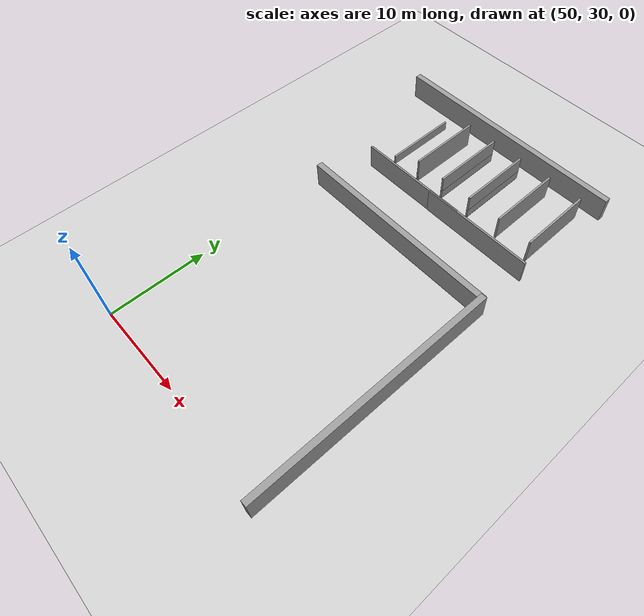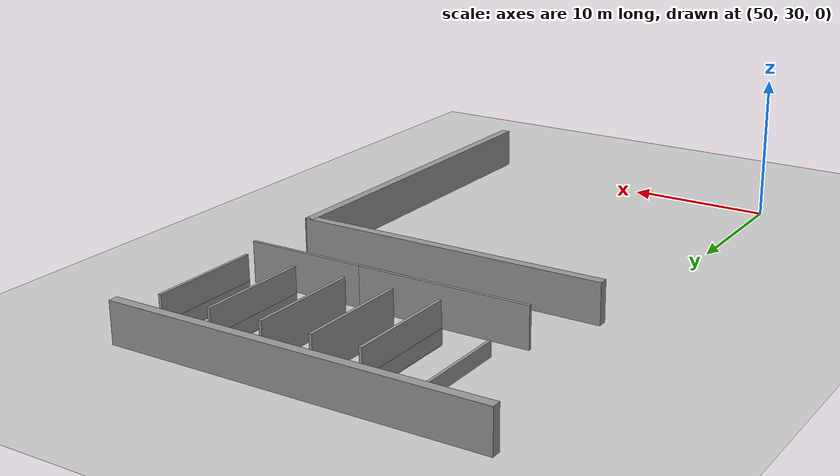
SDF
<sdf version="1.7">
 <world name="default">
  <model name="ground_plane">
   <static>1</static>
   <link name="link">
    <collision name="collision">
     <geometry><plane><normal>0 0 1</normal><size>100 100</size></plane></geometry>
     <surface><friction><ode><mu>100</mu><mu2>50</mu2></ode></friction></surface>
    </collision>
    <visual name="visual">
     <cast_shadows>0</cast_shadows>
     <geometry><plane><normal>0 0 1</normal><size>100 100</size></plane></geometry>
     <material>
      <script><uri>file://media/materials/scripts/gazebo.material</uri><name>Gazebo/Grey</name></script>
     </material>
    </visual>
   </link>
  </model>
  <model name="grey_wall_long_2_clone_0">
   <link name="link">
    <pose>0 0 1.37589 0 -0 0</pose>
    <inertial>
     <inertia><ixx>0</ixx><ixy>0</ixy><ixz>0</ixz><iyy>0</iyy><iyz>0</iyz><izz>0</izz></inertia>
     <mass>0</mass>
    </inertial>
    <visual name="visual">
     <cast_shadows>0</cast_shadows>
     <geometry><box><size>25.8815 0.642976 2.8</size></box></geometry>
     <material>
      <script>
       <uri>model://grey_wall/materials/scripts</uri>
       <uri>model://grey_wall/materials/textures</uri>
       <name>vrc/grey_wall</name>
      </script>
      <shader type="pixel"><normal_map>__default__</normal_map></shader>
      <ambient>1 1 1 1</ambient>
      <diffuse>1 1 1 1</diffuse>
      <specular>0 0 0 1</specular>
      <emissive>0 0 0 1</emissive>
     </material>
    </visual>
    <collision name="collision">
     <geometry><box><size>25.8815 0.642976 2.8</size></box></geometry>
     <surface>
      <friction>
       <ode><mu>1</mu><mu2>1</mu2><fdir1>0 0 0</fdir1><slip1>0</slip1><slip2>0</slip2></ode>
       <torsional>
        <coefficient>1</coefficient>
        <patch_radius>0</patch_radius>
        <surface_radius>0</surface_radius>
        <use_patch_radius>1</use_patch_radius>
        <ode><slip>0</slip></ode>
       </torsional>
      </friction>
      <bounce><restitution_coefficient>0</restitution_coefficient><threshold>1e+06</threshold></bounce>
      <contact>
       <collide_without_contact>0</collide_without_contact>
       <collide_without_contact_bitmask>1</collide_without_contact_bitmask>
       <collide_bitmask>1</collide_bitmask>
       <ode>
        <soft_cfm>0</soft_cfm>
        <soft_erp>0.2</soft_erp>
        <kp>1e+13</kp>
        <kd>1</kd>
        <max_vel>0.01</max_vel>
        <min_depth>0</min_depth>
       </ode>
       <bullet>
        <split_impulse>1</split_impulse>
        <split_impulse_penetration_threshold>-0.01</split_impulse_penetration_threshold>
        <soft_cfm>0</soft_cfm>
        <soft_erp>0.2</soft_erp>
        <kp>1e+13</kp>
        <kd>1</kd>
       </bullet>
      </contact>
     </surface>
    </collision>
   </link>
   <static>1</static>
   <pose>60.5181 71.8016 0 0 -0 0</pose>
  </model>
  <model name="grey_wall_long_term_clone_0">
   <link name="link">
    <pose>-1.74587 -0.378849 1.37589 0 -0 0</pose>
    <inertial>
     <inertia><ixx>0</ixx><ixy>0</ixy><ixz>0</ixz><iyy>0</iyy><iyz>0</iyz><izz>0</izz></inertia>
     <mass>0</mass>
    </inertial>
    <visual name="visual">
     <cast_shadows>0</cast_shadows>
     <geometry><box><size>22.1596 0.642976 2.8</size></box></geometry>
     <material>
      <script>
       <uri>model://grey_wall/materials/scripts</uri>
       <uri>model://grey_wall/materials/textures</uri>
       <name>vrc/grey_wall</name>
      </script>
      <shader type="pixel"><normal_map>__default__</normal_map></shader>
      <ambient>1 1 1 1</ambient>
      <diffuse>1 1 1 1</diffuse>
      <specular>0 0 0 1</specular>
      <emissive>0 0 0 1</emissive>
     </material>
    </visual>
    <collision name="collision">
     <geometry><box><size>22.1596 0.642976 2.8</size></box></geometry>
     <surface>
      <friction>
       <ode><mu>1</mu><mu2>1</mu2><fdir1>0 0 0</fdir1><slip1>0</slip1><slip2>0</slip2></ode>
       <torsional>
        <coefficient>1</coefficient>
        <patch_radius>0</patch_radius>
        <surface_radius>0</surface_radius>
        <use_patch_radius>1</use_patch_radius>
        <ode><slip>0</slip></ode>
       </torsional>
      </friction>
      <bounce><restitution_coefficient>0</restitution_coefficient><threshold>1e+06</threshold></bounce>
      <contact>
       <collide_without_contact>0</collide_without_contact>
       <collide_without_contact_bitmask>1</collide_without_contact_bitmask>
       <collide_bitmask>1</collide_bitmask>
       <ode>
        <soft_cfm>0</soft_cfm>
        <soft_erp>0.2</soft_erp>
        <kp>1e+13</kp>
        <kd>1</kd>
        <max_vel>0.01</max_vel>
        <min_depth>0</min_depth>
       </ode>
       <bullet>
        <split_impulse>1</split_impulse>
        <split_impulse_penetration_threshold>-0.01</split_impulse_penetration_threshold>
        <soft_cfm>0</soft_cfm>
        <soft_erp>0.2</soft_erp>
        <kp>1e+13</kp>
        <kd>1</kd>
       </bullet>
      </contact>
     </surface>
    </collision>
   </link>
   <static>1</static>
   <pose>63.4001 54.7813 0 0 -0 0</pose>
  </model>
  <model name="grew_wall_long_vertial_1_clone_clone_3">
   <model name="grey_wall_long">
    <link name="link">
     <pose>0 0 1.37589 0 -0 0</pose>
     <inertial>
      <inertia><ixx>0</ixx><ixy>0</ixy><ixz>0</ixz><iyy>0</iyy><iyz>0</iyz><izz>0</izz></inertia>
      <mass>0</mass>
     </inertial>
     <visual name="visual">
      <cast_shadows>0</cast_shadows>
      <geometry><box><size>25.8815 0.642976 2.8</size></box></geometry>
      <material>
       <script>
        <uri>model://grey_wall/materials/scripts</uri>
        <uri>model://grey_wall/materials/textures</uri>
        <name>vrc/grey_wall</name>
       </script>
       <shader type="pixel"><normal_map>__default__</normal_map></shader>
       <ambient>1 1 1 1</ambient>
       <diffuse>1 1 1 1</diffuse>
       <specular>0 0 0 1</specular>
       <emissive>0 0 0 1</emissive>
      </material>
     </visual>
     <collision name="collision">
      <geometry><box><size>25.8815 0.642976 2.8</size></box></geometry>
      <surface>
       <friction>
        <ode><mu>1</mu><mu2>1</mu2><fdir1>0 0 0</fdir1><slip1>0</slip1><slip2>0</slip2></ode>
        <torsional>
         <coefficient>1</coefficient>
         <patch_radius>0</patch_radius>
         <surface_radius>0</surface_radius>
         <use_patch_radius>1</use_patch_radius>
         <ode><slip>0</slip></ode>
        </torsional>
       </friction>
       <bounce><restitution_coefficient>0</restitution_coefficient><threshold>1e+06</threshold></bounce>
       <contact>
        <collide_without_contact>0</collide_without_contact>
        <collide_without_contact_bitmask>1</collide_without_contact_bitmask>
        <collide_bitmask>1</collide_bitmask>
        <ode>
         <soft_cfm>0</soft_cfm>
         <soft_erp>0.2</soft_erp>
         <kp>1e+13</kp>
         <kd>1</kd>
         <max_vel>0.01</max_vel>
         <min_depth>0</min_depth>
        </ode>
        <bullet>
         <split_impulse>1</split_impulse>
         <split_impulse_penetration_threshold>-0.01</split_impulse_penetration_threshold>
         <soft_cfm>0</soft_cfm>
         <soft_erp>0.2</soft_erp>
         <kp>1e+13</kp>
         <kd>1</kd>
        </bullet>
       </contact>
      </surface>
     </collision>
    </link>
    <static>1</static>
    <pose>1e-06 -0 0 0 -0 1.57003</pose>
   </model>
   <static>0</static>
   <pose>72.5178 41.7329 0 0 -0 0</pose>
  </model>
  <model name="grey_wall_12m_clone_0">
   <link name="link">
    <pose>0.289112 -0.003891 1.4 0 -0 0</pose>
    <inertial>
     <inertia><ixx>0</ixx><ixy>0</ixy><ixz>0</ixz><iyy>0</iyy><iyz>0</iyz><izz>0</izz></inertia>
     <mass>0</mass>
    </inertial>
    <visual name="visual">
     <cast_shadows>0</cast_shadows>
     <geometry><box><size>12.0527 0.2 2.8</size></box></geometry>
     <material>
      <script>
       <uri>model://grey_wall/materials/scripts</uri>
       <uri>model://grey_wall/materials/textures</uri>
       <name>vrc/grey_wall</name>
      </script>
      <shader type="pixel"/>
      <ambient>1 1 1 1</ambient>
      <diffuse>1 1 1 1</diffuse>
      <specular>0 0 0 1</specular>
      <emissive>0 0 0 1</emissive>
     </material>
    </visual>
    <collision name="collision">
     <geometry><box><size>12.0527 0.2 2.8</size></box></geometry>
     <surface>
      <friction>
       <ode><mu>1</mu><mu2>1</mu2><fdir1>0 0 0</fdir1><slip1>0</slip1><slip2>0</slip2></ode>
       <torsional>
        <coefficient>1</coefficient>
        <patch_radius>0</patch_radius>
        <surface_radius>0</surface_radius>
        <use_patch_radius>1</use_patch_radius>
        <ode><slip>0</slip></ode>
       </torsional>
      </friction>
      <bounce><restitution_coefficient>0</restitution_coefficient><threshold>1e+06</threshold></bounce>
      <contact>
       <collide_without_contact>0</collide_without_contact>
       <collide_without_contact_bitmask>1</collide_without_contact_bitmask>
       <collide_bitmask>1</collide_bitmask>
       <ode>
        <soft_cfm>0</soft_cfm>
        <soft_erp>0.2</soft_erp>
        <kp>1e+13</kp>
        <kd>1</kd>
        <max_vel>0.01</max_vel>
        <min_depth>0</min_depth>
       </ode>
       <bullet>
        <split_impulse>1</split_impulse>
        <split_impulse_penetration_threshold>-0.01</split_impulse_penetration_threshold>
        <soft_cfm>0</soft_cfm>
        <soft_erp>0.2</soft_erp>
        <kp>1e+13</kp>
        <kd>1</kd>
       </bullet>
      </contact>
     </surface>
    </collision>
   </link>
   <static>1</static>
   <pose>58.1271 60.0257 0 0 -0 0</pose>
  </model>
  <model name="grey_wall_12m_clone_1">
   <link name="link">
    <pose>0.289112 -0.003891 1.4 0 -0 0</pose>
    <inertial>
     <inertia><ixx>0</ixx><ixy>0</ixy><ixz>0</ixz><iyy>0</iyy><iyz>0</iyz><izz>0</izz></inertia>
     <mass>0</mass>
    </inertial>
    <visual name="visual">
     <cast_shadows>0</cast_shadows>
     <geometry><box><size>12.0527 0.2 2.8</size></box></geometry>
     <material>
      <script>
       <uri>model://grey_wall/materials/scripts</uri>
       <uri>model://grey_wall/materials/textures</uri>
       <name>vrc/grey_wall</name>
      </script>
      <shader type="pixel"/>
      <ambient>1 1 1 1</ambient>
      <diffuse>1 1 1 1</diffuse>
      <specular>0 0 0 1</specular>
      <emissive>0 0 0 1</emissive>
     </material>
    </visual>
    <collision name="collision">
     <geometry><box><size>12.0527 0.2 2.8</size></box></geometry>
     <surface>
      <friction>
       <ode><mu>1</mu><mu2>1</mu2><fdir1>0 0 0</fdir1><slip1>0</slip1><slip2>0</slip2></ode>
       <torsional>
        <coefficient>1</coefficient>
        <patch_radius>0</patch_radius>
        <surface_radius>0</surface_radius>
        <use_patch_radius>1</use_patch_radius>
        <ode><slip>0</slip></ode>
       </torsional>
      </friction>
      <bounce><restitution_coefficient>0</restitution_coefficient><threshold>1e+06</threshold></bounce>
      <contact>
       <collide_without_contact>0</collide_without_contact>
       <collide_without_contact_bitmask>1</collide_without_contact_bitmask>
       <collide_bitmask>1</collide_bitmask>
       <ode>
        <soft_cfm>0</soft_cfm>
        <soft_erp>0.2</soft_erp>
        <kp>1e+13</kp>
        <kd>1</kd>
        <max_vel>0.01</max_vel>
        <min_depth>0</min_depth>
       </ode>
       <bullet>
        <split_impulse>1</split_impulse>
        <split_impulse_penetration_threshold>-0.01</split_impulse_penetration_threshold>
        <soft_cfm>0</soft_cfm>
        <soft_erp>0.2</soft_erp>
        <kp>1e+13</kp>
        <kd>1</kd>
       </bullet>
      </contact>
     </surface>
    </collision>
   </link>
   <static>1</static>
   <pose>66.482 59.9942 0 0 -0 0</pose>
  </model>
  <model name="grey_wall_low_clone_4">
   <link name="link">
    <pose>0.546134 -0.568384 0.521109 0 -0 0</pose>
    <inertial>
     <inertia><ixx>0</ixx><ixy>0</ixy><ixz>0</ixz><iyy>0</iyy><iyz>0</iyz><izz>0</izz></inertia>
     <mass>0</mass>
    </inertial>
    <visual name="visual">
     <cast_shadows>0</cast_shadows>
     <geometry><box><size>7.82417 0.2 1.03493</size></box></geometry>
     <material>
      <script>
       <uri>model://grey_wall/materials/scripts</uri>
       <uri>model://grey_wall/materials/textures</uri>
       <name>vrc/grey_wall</name>
      </script>
      <shader type="pixel"/>
      <ambient>1 1 1 1</ambient>
      <diffuse>1 1 1 1</diffuse>
      <specular>0 0 0 1</specular>
      <emissive>0 0 0 1</emissive>
     </material>
    </visual>
    <collision name="collision">
     <geometry><box><size>7.82417 0.2 1.03493</size></box></geometry>
     <surface>
      <friction>
       <ode><mu>1</mu><mu2>1</mu2><fdir1>0 0 0</fdir1><slip1>0</slip1><slip2>0</slip2></ode>
       <torsional>
        <coefficient>1</coefficient>
        <patch_radius>0</patch_radius>
        <surface_radius>0</surface_radius>
        <use_patch_radius>1</use_patch_radius>
        <ode><slip>0</slip></ode>
       </torsional>
      </friction>
      <bounce><restitution_coefficient>0</restitution_coefficient><threshold>1e+06</threshold></bounce>
      <contact>
       <collide_without_contact>0</collide_without_contact>
       <collide_without_contact_bitmask>1</collide_without_contact_bitmask>
       <collide_bitmask>1</collide_bitmask>
       <ode>
        <soft_cfm>0</soft_cfm>
        <soft_erp>0.2</soft_erp>
        <kp>1e+13</kp>
        <kd>1</kd>
        <max_vel>0.01</max_vel>
        <min_depth>0</min_depth>
       </ode>
       <bullet>
        <split_impulse>1</split_impulse>
        <split_impulse_penetration_threshold>-0.01</split_impulse_penetration_threshold>
        <soft_cfm>0</soft_cfm>
        <soft_erp>0.2</soft_erp>
        <kp>1e+13</kp>
        <kd>1</kd>
       </bullet>
      </contact>
     </surface>
    </collision>
   </link>
   <static>1</static>
   <pose>54.4282 66.5036 -0 0 0 -1.56746</pose>
  </model>
  <model name="grey_wall_low_clone_5">
   <link name="link">
    <pose>0.546134 -0.568384 0.521109 0 -0 0</pose>
    <inertial>
     <inertia><ixx>0</ixx><ixy>0</ixy><ixz>0</ixz><iyy>0</iyy><iyz>0</iyz><izz>0</izz></inertia>
     <mass>0</mass>
    </inertial>
    <visual name="visual">
     <cast_shadows>0</cast_shadows>
     <geometry><box><size>7.82417 0.2 1.03493</size></box></geometry>
     <material>
      <script>
       <uri>model://grey_wall/materials/scripts</uri>
       <uri>model://grey_wall/materials/textures</uri>
       <name>vrc/grey_wall</name>
      </script>
      <shader type="pixel"/>
      <ambient>1 1 1 1</ambient>
      <diffuse>1 1 1 1</diffuse>
      <specular>0 0 0 1</specular>
      <emissive>0 0 0 1</emissive>
     </material>
    </visual>
    <collision name="collision">
     <geometry><box><size>7.82417 0.2 1.03493</size></box></geometry>
     <surface>
      <friction>
       <ode><mu>1</mu><mu2>1</mu2><fdir1>0 0 0</fdir1><slip1>0</slip1><slip2>0</slip2></ode>
       <torsional>
        <coefficient>1</coefficient>
        <patch_radius>0</patch_radius>
        <surface_radius>0</surface_radius>
        <use_patch_radius>1</use_patch_radius>
        <ode><slip>0</slip></ode>
       </torsional>
      </friction>
      <bounce><restitution_coefficient>0</restitution_coefficient><threshold>1e+06</threshold></bounce>
      <contact>
       <collide_without_contact>0</collide_without_contact>
       <collide_without_contact_bitmask>1</collide_without_contact_bitmask>
       <collide_bitmask>1</collide_bitmask>
       <ode>
        <soft_cfm>0</soft_cfm>
        <soft_erp>0.2</soft_erp>
        <kp>1e+13</kp>
        <kd>1</kd>
        <max_vel>0.01</max_vel>
        <min_depth>0</min_depth>
       </ode>
       <bullet>
        <split_impulse>1</split_impulse>
        <split_impulse_penetration_threshold>-0.01</split_impulse_penetration_threshold>
        <soft_cfm>0</soft_cfm>
        <soft_erp>0.2</soft_erp>
        <kp>1e+13</kp>
        <kd>1</kd>
       </bullet>
      </contact>
     </surface>
    </collision>
   </link>
   <static>1</static>
   <pose>57.7577 66.512 -0 0 0 -1.56746</pose>
  </model>
  <model name="grey_wall_low_clone_6">
   <link name="link">
    <pose>0.546134 -0.568384 0.521109 0 -0 0</pose>
    <inertial>
     <inertia><ixx>0</ixx><ixy>0</ixy><ixz>0</ixz><iyy>0</iyy><iyz>0</iyz><izz>0</izz></inertia>
     <mass>0</mass>
    </inertial>
    <visual name="visual">
     <cast_shadows>0</cast_shadows>
     <geometry><box><size>7.82417 0.2 1.03493</size></box></geometry>
     <material>
      <script>
       <uri>model://grey_wall/materials/scripts</uri>
       <uri>model://grey_wall/materials/textures</uri>
       <name>vrc/grey_wall</name>
      </script>
      <shader type="pixel"/>
      <ambient>1 1 1 1</ambient>
      <diffuse>1 1 1 1</diffuse>
      <specular>0 0 0 1</specular>
      <emissive>0 0 0 1</emissive>
     </material>
    </visual>
    <collision name="collision">
     <geometry><box><size>7.82417 0.2 1.03493</size></box></geometry>
     <surface>
      <friction>
       <ode><mu>1</mu><mu2>1</mu2><fdir1>0 0 0</fdir1><slip1>0</slip1><slip2>0</slip2></ode>
       <torsional>
        <coefficient>1</coefficient>
        <patch_radius>0</patch_radius>
        <surface_radius>0</surface_radius>
        <use_patch_radius>1</use_patch_radius>
        <ode><slip>0</slip></ode>
       </torsional>
      </friction>
      <bounce><restitution_coefficient>0</restitution_coefficient><threshold>1e+06</threshold></bounce>
      <contact>
       <collide_without_contact>0</collide_without_contact>
       <collide_without_contact_bitmask>1</collide_without_contact_bitmask>
       <collide_bitmask>1</collide_bitmask>
       <ode>
        <soft_cfm>0</soft_cfm>
        <soft_erp>0.2</soft_erp>
        <kp>1e+13</kp>
        <kd>1</kd>
        <max_vel>0.01</max_vel>
        <min_depth>0</min_depth>
       </ode>
       <bullet>
        <split_impulse>1</split_impulse>
        <split_impulse_penetration_threshold>-0.01</split_impulse_penetration_threshold>
        <soft_cfm>0</soft_cfm>
        <soft_erp>0.2</soft_erp>
        <kp>1e+13</kp>
        <kd>1</kd>
       </bullet>
      </contact>
     </surface>
    </collision>
   </link>
   <static>1</static>
   <pose>61.1482 66.529 -0 0 0 -1.56746</pose>
  </model>
  <model name="grey_wall_low_clone_7">
   <link name="link">
    <pose>0.546134 -0.568384 0.521109 0 -0 0</pose>
    <inertial>
     <inertia><ixx>0</ixx><ixy>0</ixy><ixz>0</ixz><iyy>0</iyy><iyz>0</iyz><izz>0</izz></inertia>
     <mass>0</mass>
    </inertial>
    <visual name="visual">
     <cast_shadows>0</cast_shadows>
     <geometry><box><size>7.82417 0.2 1.03493</size></box></geometry>
     <material>
      <script>
       <uri>model://grey_wall/materials/scripts</uri>
       <uri>model://grey_wall/materials/textures</uri>
       <name>vrc/grey_wall</name>
      </script>
      <shader type="pixel"/>
      <ambient>1 1 1 1</ambient>
      <diffuse>1 1 1 1</diffuse>
      <specular>0 0 0 1</specular>
      <emissive>0 0 0 1</emissive>
     </material>
    </visual>
    <collision name="collision">
     <geometry><box><size>7.82417 0.2 1.03493</size></box></geometry>
     <surface>
      <friction>
       <ode><mu>1</mu><mu2>1</mu2><fdir1>0 0 0</fdir1><slip1>0</slip1><slip2>0</slip2></ode>
       <torsional>
        <coefficient>1</coefficient>
        <patch_radius>0</patch_radius>
        <surface_radius>0</surface_radius>
        <use_patch_radius>1</use_patch_radius>
        <ode><slip>0</slip></ode>
       </torsional>
      </friction>
      <bounce><restitution_coefficient>0</restitution_coefficient><threshold>1e+06</threshold></bounce>
      <contact>
       <collide_without_contact>0</collide_without_contact>
       <collide_without_contact_bitmask>1</collide_without_contact_bitmask>
       <collide_bitmask>1</collide_bitmask>
       <ode>
        <soft_cfm>0</soft_cfm>
        <soft_erp>0.2</soft_erp>
        <kp>1e+13</kp>
        <kd>1</kd>
        <max_vel>0.01</max_vel>
        <min_depth>0</min_depth>
       </ode>
       <bullet>
        <split_impulse>1</split_impulse>
        <split_impulse_penetration_threshold>-0.01</split_impulse_penetration_threshold>
        <soft_cfm>0</soft_cfm>
        <soft_erp>0.2</soft_erp>
        <kp>1e+13</kp>
        <kd>1</kd>
       </bullet>
      </contact>
     </surface>
    </collision>
   </link>
   <static>1</static>
   <pose>64.6561 66.5667 -0 0 0 -1.56746</pose>
  </model>
  <model name="grey_wall_low_clone_8">
   <link name="link">
    <pose>0.546134 -0.568384 0.521109 0 -0 0</pose>
    <inertial>
     <inertia><ixx>0</ixx><ixy>0</ixy><ixz>0</ixz><iyy>0</iyy><iyz>0</iyz><izz>0</izz></inertia>
     <mass>0</mass>
    </inertial>
    <visual name="visual">
     <cast_shadows>0</cast_shadows>
     <geometry><box><size>7.82417 0.2 1.03493</size></box></geometry>
     <material>
      <script>
       <uri>model://grey_wall/materials/scripts</uri>
       <uri>model://grey_wall/materials/textures</uri>
       <name>vrc/grey_wall</name>
      </script>
      <shader type="pixel"/>
      <ambient>1 1 1 1</ambient>
      <diffuse>1 1 1 1</diffuse>
      <specular>0 0 0 1</specular>
      <emissive>0 0 0 1</emissive>
     </material>
    </visual>
    <collision name="collision">
     <geometry><box><size>7.82417 0.2 1.03493</size></box></geometry>
     <surface>
      <friction>
       <ode><mu>1</mu><mu2>1</mu2><fdir1>0 0 0</fdir1><slip1>0</slip1><slip2>0</slip2></ode>
       <torsional>
        <coefficient>1</coefficient>
        <patch_radius>0</patch_radius>
        <surface_radius>0</surface_radius>
        <use_patch_radius>1</use_patch_radius>
        <ode><slip>0</slip></ode>
       </torsional>
      </friction>
      <bounce><restitution_coefficient>0</restitution_coefficient><threshold>1e+06</threshold></bounce>
      <contact>
       <collide_without_contact>0</collide_without_contact>
       <collide_without_contact_bitmask>1</collide_without_contact_bitmask>
       <collide_bitmask>1</collide_bitmask>
       <ode>
        <soft_cfm>0</soft_cfm>
        <soft_erp>0.2</soft_erp>
        <kp>1e+13</kp>
        <kd>1</kd>
        <max_vel>0.01</max_vel>
        <min_depth>0</min_depth>
       </ode>
       <bullet>
        <split_impulse>1</split_impulse>
        <split_impulse_penetration_threshold>-0.01</split_impulse_penetration_threshold>
        <soft_cfm>0</soft_cfm>
        <soft_erp>0.2</soft_erp>
        <kp>1e+13</kp>
        <kd>1</kd>
       </bullet>
      </contact>
     </surface>
    </collision>
   </link>
   <static>1</static>
   <pose>68.3116 66.6864 -0 0 0 -1.56746</pose>
  </model>
  <model name="grey_wall_low_clone_9">
   <link name="link">
    <pose>0.546134 -0.568384 0.521109 0 -0 0</pose>
    <inertial>
     <inertia><ixx>0</ixx><ixy>0</ixy><ixz>0</ixz><iyy>0</iyy><iyz>0</iyz><izz>0</izz></inertia>
     <mass>0</mass>
    </inertial>
    <visual name="visual">
     <cast_shadows>0</cast_shadows>
     <geometry><box><size>7.82417 0.2 1.03493</size></box></geometry>
     <material>
      <script>
       <uri>model://grey_wall/materials/scripts</uri>
       <uri>model://grey_wall/materials/textures</uri>
       <name>vrc/grey_wall</name>
      </script>
      <shader type="pixel"/>
      <ambient>1 1 1 1</ambient>
      <diffuse>1 1 1 1</diffuse>
      <specular>0 0 0 1</specular>
      <emissive>0 0 0 1</emissive>
     </material>
    </visual>
    <collision name="collision">
     <geometry><box><size>7.82417 0.2 1.03493</size></box></geometry>
     <surface>
      <friction>
       <ode><mu>1</mu><mu2>1</mu2><fdir1>0 0 0</fdir1><slip1>0</slip1><slip2>0</slip2></ode>
       <torsional>
        <coefficient>1</coefficient>
        <patch_radius>0</patch_radius>
        <surface_radius>0</surface_radius>
        <use_patch_radius>1</use_patch_radius>
        <ode><slip>0</slip></ode>
       </torsional>
      </friction>
      <bounce><restitution_coefficient>0</restitution_coefficient><threshold>1e+06</threshold></bounce>
      <contact>
       <collide_without_contact>0</collide_without_contact>
       <collide_without_contact_bitmask>1</collide_without_contact_bitmask>
       <collide_bitmask>1</collide_bitmask>
       <ode>
        <soft_cfm>0</soft_cfm>
        <soft_erp>0.2</soft_erp>
        <kp>1e+13</kp>
        <kd>1</kd>
        <max_vel>0.01</max_vel>
        <min_depth>0</min_depth>
       </ode>
       <bullet>
        <split_impulse>1</split_impulse>
        <split_impulse_penetration_threshold>-0.01</split_impulse_penetration_threshold>
        <soft_cfm>0</soft_cfm>
        <soft_erp>0.2</soft_erp>
        <kp>1e+13</kp>
        <kd>1</kd>
       </bullet>
      </contact>
     </surface>
    </collision>
   </link>
   <static>1</static>
   <pose>72.0966 66.6291 -0 0 0 -1.56746</pose>
  </model>
  <model name="grey_wall_high_clone_5">
   <link name="link">
    <pose>0.546134 -0.568384 0.521109 0 -0 0</pose>
    <inertial>
     <inertia><ixx>0</ixx><ixy>0</ixy><ixz>0</ixz><iyy>0</iyy><iyz>0</iyz><izz>0</izz></inertia>
     <mass>0</mass>
    </inertial>
    <visual name="visual">
     <cast_shadows>0</cast_shadows>
     <geometry><box><size>7.82417 0.2 4.57376</size></box></geometry>
     <material>
      <script>
       <uri>model://grey_wall/materials/scripts</uri>
       <uri>model://grey_wall/materials/textures</uri>
       <name>vrc/grey_wall</name>
      </script>
      <shader type="pixel"/>
      <ambient>1 1 1 1</ambient>
      <diffuse>1 1 1 1</diffuse>
      <specular>0 0 0 1</specular>
      <emissive>0 0 0 1</emissive>
     </material>
    </visual>
    <collision name="collision">
     <geometry><box><size>7.82417 0.2 4.57376</size></box></geometry>
     <surface>
      <friction>
       <ode><mu>1</mu><mu2>1</mu2><fdir1>0 0 0</fdir1><slip1>0</slip1><slip2>0</slip2></ode>
       <torsional>
        <coefficient>1</coefficient>
        <patch_radius>0</patch_radius>
        <surface_radius>0</surface_radius>
        <use_patch_radius>1</use_patch_radius>
        <ode><slip>0</slip></ode>
       </torsional>
      </friction>
      <bounce><restitution_coefficient>0</restitution_coefficient><threshold>1e+06</threshold></bounce>
      <contact>
       <collide_without_contact>0</collide_without_contact>
       <collide_without_contact_bitmask>1</collide_without_contact_bitmask>
       <collide_bitmask>1</collide_bitmask>
       <ode>
        <soft_cfm>0</soft_cfm>
        <soft_erp>0.2</soft_erp>
        <kp>1e+13</kp>
        <kd>1</kd>
        <max_vel>0.01</max_vel>
        <min_depth>0</min_depth>
       </ode>
       <bullet>
        <split_impulse>1</split_impulse>
        <split_impulse_penetration_threshold>-0.01</split_impulse_penetration_threshold>
        <soft_cfm>0</soft_cfm>
        <soft_erp>0.2</soft_erp>
        <kp>1e+13</kp>
        <kd>1</kd>
       </bullet>
      </contact>
     </surface>
    </collision>
   </link>
   <static>1</static>
   <pose>57.7804 66.5298 0 0 0 -1.56746</pose>
  </model>
  <model name="grey_wall_high_clone_6">
   <link name="link">
    <pose>0.546134 -0.568384 0.521109 0 -0 0</pose>
    <inertial>
     <inertia><ixx>0</ixx><ixy>0</ixy><ixz>0</ixz><iyy>0</iyy><iyz>0</iyz><izz>0</izz></inertia>
     <mass>0</mass>
    </inertial>
    <visual name="visual">
     <cast_shadows>0</cast_shadows>
     <geometry><box><size>7.82417 0.2 4.57376</size></box></geometry>
     <material>
      <script>
       <uri>model://grey_wall/materials/scripts</uri>
       <uri>model://grey_wall/materials/textures</uri>
       <name>vrc/grey_wall</name>
      </script>
      <shader type="pixel"/>
      <ambient>1 1 1 1</ambient>
      <diffuse>1 1 1 1</diffuse>
      <specular>0 0 0 1</specular>
      <emissive>0 0 0 1</emissive>
     </material>
    </visual>
    <collision name="collision">
     <geometry><box><size>7.82417 0.2 4.57376</size></box></geometry>
     <surface>
      <friction>
       <ode><mu>1</mu><mu2>1</mu2><fdir1>0 0 0</fdir1><slip1>0</slip1><slip2>0</slip2></ode>
       <torsional>
        <coefficient>1</coefficient>
        <patch_radius>0</patch_radius>
        <surface_radius>0</surface_radius>
        <use_patch_radius>1</use_patch_radius>
        <ode><slip>0</slip></ode>
       </torsional>
      </friction>
      <bounce><restitution_coefficient>0</restitution_coefficient><threshold>1e+06</threshold></bounce>
      <contact>
       <collide_without_contact>0</collide_without_contact>
       <collide_without_contact_bitmask>1</collide_without_contact_bitmask>
       <collide_bitmask>1</collide_bitmask>
       <ode>
        <soft_cfm>0</soft_cfm>
        <soft_erp>0.2</soft_erp>
        <kp>1e+13</kp>
        <kd>1</kd>
        <max_vel>0.01</max_vel>
        <min_depth>0</min_depth>
       </ode>
       <bullet>
        <split_impulse>1</split_impulse>
        <split_impulse_penetration_threshold>-0.01</split_impulse_penetration_threshold>
        <soft_cfm>0</soft_cfm>
        <soft_erp>0.2</soft_erp>
        <kp>1e+13</kp>
        <kd>1</kd>
       </bullet>
      </contact>
     </surface>
    </collision>
   </link>
   <static>1</static>
   <pose>61.1439 66.5402 0 0 0 -1.56746</pose>
  </model>
  <model name="grey_wall_high_clone_7">
   <link name="link">
    <pose>0.546134 -0.568384 0.521109 0 -0 0</pose>
    <inertial>
     <inertia><ixx>0</ixx><ixy>0</ixy><ixz>0</ixz><iyy>0</iyy><iyz>0</iyz><izz>0</izz></inertia>
     <mass>0</mass>
    </inertial>
    <visual name="visual">
     <cast_shadows>0</cast_shadows>
     <geometry><box><size>7.82417 0.2 4.57376</size></box></geometry>
     <material>
      <script>
       <uri>model://grey_wall/materials/scripts</uri>
       <uri>model://grey_wall/materials/textures</uri>
       <name>vrc/grey_wall</name>
      </script>
      <shader type="pixel"/>
      <ambient>1 1 1 1</ambient>
      <diffuse>1 1 1 1</diffuse>
      <specular>0 0 0 1</specular>
      <emissive>0 0 0 1</emissive>
     </material>
    </visual>
    <collision name="collision">
     <geometry><box><size>7.82417 0.2 4.57376</size></box></geometry>
     <surface>
      <friction>
       <ode><mu>1</mu><mu2>1</mu2><fdir1>0 0 0</fdir1><slip1>0</slip1><slip2>0</slip2></ode>
       <torsional>
        <coefficient>1</coefficient>
        <patch_radius>0</patch_radius>
        <surface_radius>0</surface_radius>
        <use_patch_radius>1</use_patch_radius>
        <ode><slip>0</slip></ode>
       </torsional>
      </friction>
      <bounce><restitution_coefficient>0</restitution_coefficient><threshold>1e+06</threshold></bounce>
      <contact>
       <collide_without_contact>0</collide_without_contact>
       <collide_without_contact_bitmask>1</collide_without_contact_bitmask>
       <collide_bitmask>1</collide_bitmask>
       <ode>
        <soft_cfm>0</soft_cfm>
        <soft_erp>0.2</soft_erp>
        <kp>1e+13</kp>
        <kd>1</kd>
        <max_vel>0.01</max_vel>
        <min_depth>0</min_depth>
       </ode>
       <bullet>
        <split_impulse>1</split_impulse>
        <split_impulse_penetration_threshold>-0.01</split_impulse_penetration_threshold>
        <soft_cfm>0</soft_cfm>
        <soft_erp>0.2</soft_erp>
        <kp>1e+13</kp>
        <kd>1</kd>
       </bullet>
      </contact>
     </surface>
    </collision>
   </link>
   <static>1</static>
   <pose>64.6526 66.5628 0 0 0 -1.56746</pose>
  </model>
  <model name="grey_wall_high_clone_8">
   <link name="link">
    <pose>0.546134 -0.568384 0.521109 0 -0 0</pose>
    <inertial>
     <inertia><ixx>0</ixx><ixy>0</ixy><ixz>0</ixz><iyy>0</iyy><iyz>0</iyz><izz>0</izz></inertia>
     <mass>0</mass>
    </inertial>
    <visual name="visual">
     <cast_shadows>0</cast_shadows>
     <geometry><box><size>7.82417 0.2 4.57376</size></box></geometry>
     <material>
      <script>
       <uri>model://grey_wall/materials/scripts</uri>
       <uri>model://grey_wall/materials/textures</uri>
       <name>vrc/grey_wall</name>
      </script>
      <shader type="pixel"/>
      <ambient>1 1 1 1</ambient>
      <diffuse>1 1 1 1</diffuse>
      <specular>0 0 0 1</specular>
      <emissive>0 0 0 1</emissive>
     </material>
    </visual>
    <collision name="collision">
     <geometry><box><size>7.82417 0.2 4.57376</size></box></geometry>
     <surface>
      <friction>
       <ode><mu>1</mu><mu2>1</mu2><fdir1>0 0 0</fdir1><slip1>0</slip1><slip2>0</slip2></ode>
       <torsional>
        <coefficient>1</coefficient>
        <patch_radius>0</patch_radius>
        <surface_radius>0</surface_radius>
        <use_patch_radius>1</use_patch_radius>
        <ode><slip>0</slip></ode>
       </torsional>
      </friction>
      <bounce><restitution_coefficient>0</restitution_coefficient><threshold>1e+06</threshold></bounce>
      <contact>
       <collide_without_contact>0</collide_without_contact>
       <collide_without_contact_bitmask>1</collide_without_contact_bitmask>
       <collide_bitmask>1</collide_bitmask>
       <ode>
        <soft_cfm>0</soft_cfm>
        <soft_erp>0.2</soft_erp>
        <kp>1e+13</kp>
        <kd>1</kd>
        <max_vel>0.01</max_vel>
        <min_depth>0</min_depth>
       </ode>
       <bullet>
        <split_impulse>1</split_impulse>
        <split_impulse_penetration_threshold>-0.01</split_impulse_penetration_threshold>
        <soft_cfm>0</soft_cfm>
        <soft_erp>0.2</soft_erp>
        <kp>1e+13</kp>
        <kd>1</kd>
       </bullet>
      </contact>
     </surface>
    </collision>
   </link>
   <static>1</static>
   <pose>68.3243 66.6751 0 0 0 -1.56746</pose>
  </model>
  <model name="grey_wall_high_clone_9">
   <link name="link">
    <pose>0.546134 -0.568384 0.521109 0 -0 0</pose>
    <inertial>
     <inertia><ixx>0</ixx><ixy>0</ixy><ixz>0</ixz><iyy>0</iyy><iyz>0</iyz><izz>0</izz></inertia>
     <mass>0</mass>
    </inertial>
    <visual name="visual">
     <cast_shadows>0</cast_shadows>
     <geometry><box><size>7.82417 0.2 4.57376</size></box></geometry>
     <material>
      <script>
       <uri>model://grey_wall/materials/scripts</uri>
       <uri>model://grey_wall/materials/textures</uri>
       <name>vrc/grey_wall</name>
      </script>
      <shader type="pixel"/>
      <ambient>1 1 1 1</ambient>
      <diffuse>1 1 1 1</diffuse>
      <specular>0 0 0 1</specular>
      <emissive>0 0 0 1</emissive>
     </material>
    </visual>
    <collision name="collision">
     <geometry><box><size>7.82417 0.2 4.57376</size></box></geometry>
     <surface>
      <friction>
       <ode><mu>1</mu><mu2>1</mu2><fdir1>0 0 0</fdir1><slip1>0</slip1><slip2>0</slip2></ode>
       <torsional>
        <coefficient>1</coefficient>
        <patch_radius>0</patch_radius>
        <surface_radius>0</surface_radius>
        <use_patch_radius>1</use_patch_radius>
        <ode><slip>0</slip></ode>
       </torsional>
      </friction>
      <bounce><restitution_coefficient>0</restitution_coefficient><threshold>1e+06</threshold></bounce>
      <contact>
       <collide_without_contact>0</collide_without_contact>
       <collide_without_contact_bitmask>1</collide_without_contact_bitmask>
       <collide_bitmask>1</collide_bitmask>
       <ode>
        <soft_cfm>0</soft_cfm>
        <soft_erp>0.2</soft_erp>
        <kp>1e+13</kp>
        <kd>1</kd>
        <max_vel>0.01</max_vel>
        <min_depth>0</min_depth>
       </ode>
       <bullet>
        <split_impulse>1</split_impulse>
        <split_impulse_penetration_threshold>-0.01</split_impulse_penetration_threshold>
        <soft_cfm>0</soft_cfm>
        <soft_erp>0.2</soft_erp>
        <kp>1e+13</kp>
        <kd>1</kd>
       </bullet>
      </contact>
     </surface>
    </collision>
   </link>
   <static>1</static>
   <pose>72.1201 66.6034 0 0 0 -1.56746</pose>
  </model>
 </world>
</sdf>
